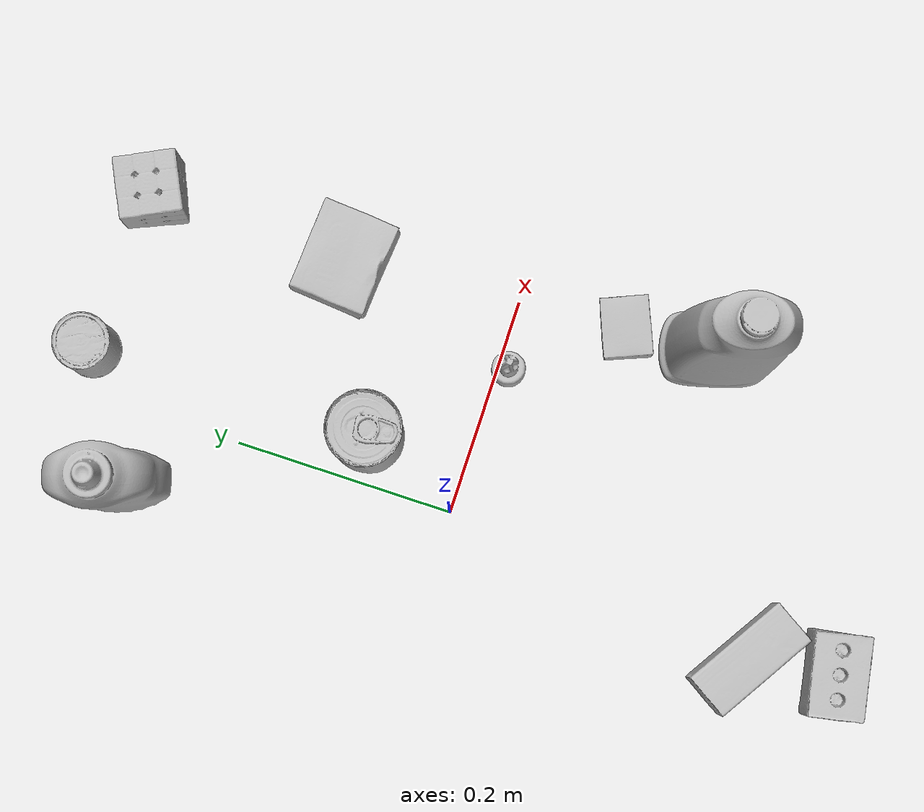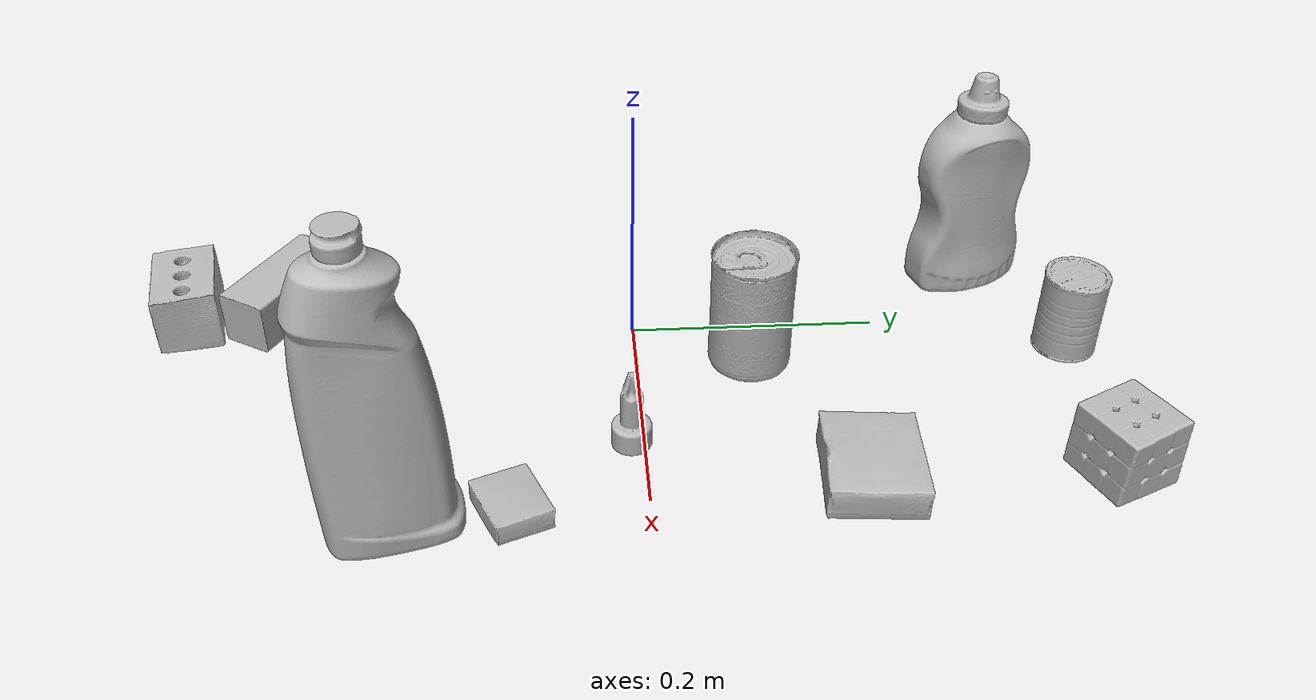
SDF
<sdf version="1.4">
  <world name="default">
    <light name="light1" type="point">
      <pose>0 0 1 0 0 0</pose>
      <diffuse>3 3 3 1</diffuse>
      <specular>3 3 3 1</specular>
    </light>
    <light name="light2" type="point">
      <pose>0 0.5 2 0 0 0</pose>
      <diffuse>1 1 1 1</diffuse>
      <specular>1 1 1 1</specular>
    </light>
    <light name="light3" type="point">
      <pose>0 0.5 2 0 0 0</pose>
      <diffuse>3 3 3 1</diffuse>
      <specular>3 3 3 1</specular>
    </light>
    <scene>
      <ambient>0.7 0.7 0.7</ambient>
    </scene>
    <model name="bottle1">
      <link name="link_bottle1">
        <collision name="default">
          <geometry>
            <mesh>
              <uri>model://bleach_cleanser/collision_meshes/collision.obj</uri>
              <scale>1.0 1.0 1.0</scale>
            </mesh>
          </geometry>
          <surface>
            <friction>
              <ode>
                <mu>0.5</mu>
                <mu2>0.5</mu2>
              </ode>
            </friction>
          <contact>
        <ode>
            <max_vel>0</max_vel>
            <min_depth>0.0001</min_depth>
            <kp>1e8</kp>
        </ode>
    </contact></surface>
        </collision>
        <visual name="default">
          <geometry>
            <mesh>
              <uri>model://bleach_cleanser/visual_meshes/visual.dae</uri>
              <scale>1.0 1.0 1.0</scale>
            </mesh>
          </geometry>
        </visual>
        <inertial>
          <mass>1.1050143241882324</mass>
          <pose>0.00012193183647468686 0.0037838828284293413 -0.02442161738872528 -0.07381670616137478 0.0004201160282461273 -0.006875061809122935</pose>
          <inertia>
            <ixx>0.0053782654</ixx>
            <iyy>0.005011756</iyy>
            <izz>0.00091954356</izz>
            <ixy>0</ixy>
            <ixz>0</ixz>
            <iyz>0</iyz>
          </inertia>
        </inertial>
      </link>
      <pose>0.21297812461853027 -0.18106931447982788 0.12578412890434265 -0.0001983227402467231 1.8017523485804916e-05 -2.8913253571844595</pose>
    </model>
    <model name="bottle2">
      <link name="link_bottle2">
        <collision name="default">
          <geometry>
            <mesh>
              <uri>model://mustard_bottle/collision_meshes/collision.obj</uri>
              <scale>1.0 1.0 1.0</scale>
            </mesh>
          </geometry>
          <surface>
            <friction>
              <ode>
                <mu>0.5</mu>
                <mu2>0.5</mu2>
              </ode>
            </friction>
          <contact>
        <ode>
            <max_vel>0</max_vel>
            <min_depth>0.0001</min_depth>
            <kp>1e8</kp>
        </ode>
    </contact></surface>
        </collision>
        <visual name="default">
          <geometry>
            <mesh>
              <uri>model://mustard_bottle/visual_meshes/visual.dae</uri>
              <scale>1.0 1.0 1.0</scale>
            </mesh>
          </geometry>
        </visual>
        <inertial>
          <mass>0.622285008430481</mass>
          <pose>0.0005032453336752951 -0.0001564739941386506 -0.0174757931381464 0.0004182326458762318 0.0009465782998157723 0.024853714910341117</pose>
          <inertia>
            <ixx>0.0017280002</ixx>
            <iyy>0.0015161741</iyy>
            <izz>0.00045541534</izz>
            <ixy>0</ixy>
            <ixz>0</ixz>
            <iyz>0</iyz>
          </inertia>
        </inertial>
      </link>
      <pose>-0.06735839694738388 0.29105642437934875 0.09568724781274796 -0.001497343943665016 0.025964682202750822 -2.858460105919197</pose>
    </model>
    <model name="toy1">
      <link name="link_toy1">
        <collision name="default">
          <geometry>
            <mesh>
              <uri>model://foam_brick/collision_meshes/collision.obj</uri>
              <scale>1.0 1.0 1.0</scale>
            </mesh>
          </geometry>
          <surface>
            <friction>
              <ode>
                <mu>0.5</mu>
                <mu2>0.5</mu2>
              </ode>
            </friction>
          <contact>
        <ode>
            <max_vel>0</max_vel>
            <min_depth>0.0001</min_depth>
            <kp>1e8</kp>
        </ode>
    </contact></surface>
        </collision>
        <visual name="default">
          <geometry>
            <mesh>
              <uri>model://foam_brick/visual_meshes/visual.dae</uri>
              <scale>1.0 1.0 1.0</scale>
            </mesh>
          </geometry>
        </visual>
        <inertial>
          <mass>0.1664208173751831</mass>
          <pose>-0.00025224717683158815 0.0003458438441157341 -0.00025321010616607964 -0.2940189404221327 0.017274440573450563 -0.0007449871782747126</pose>
          <inertia>
            <ixx>7.269573e-05</ixx>
            <iyy>0.00011606247</iyy>
            <izz>0.000117537464</izz>
            <ixy>0</ixy>
            <ixz>0</ixz>
            <iyz>0</iyz>
          </inertia>
        </inertial>
      </link>
      <pose>-0.0304952934384346 -0.36809200048446655 0.025922803208231926 0.01341657253645126 0.004152976894201747 0.1903158438456509</pose>
    </model>
    <model name="toy2">
      <link name="link_toy2">
        <collision name="default">
          <geometry>
            <mesh>
              <uri>model://d_toy_airplane/collision_meshes/collision.obj</uri>
              <scale>1.0 1.0 1.0</scale>
            </mesh>
          </geometry>
          <surface>
            <friction>
              <ode>
                <mu>0.5</mu>
                <mu2>0.5</mu2>
              </ode>
            </friction>
          <contact>
        <ode>
            <max_vel>0</max_vel>
            <min_depth>0.0001</min_depth>
            <kp>1e8</kp>
        </ode>
    </contact></surface>
        </collision>
        <visual name="default">
          <geometry>
            <mesh>
              <uri>model://d_toy_airplane/visual_meshes/visual.dae</uri>
              <scale>1.0 1.0 1.0</scale>
            </mesh>
          </geometry>
        </visual>
        <inertial>
          <mass>0.021938346326351166</mass>
          <pose>9.410325583303347e-05 -5.8093231928069144e-05 -0.01172809861600399 0.0002669142468379238 0.0046790018194854816 0.5194488187392164</pose>
          <inertia>
            <ixx>6.5766894e-06</ixx>
            <iyy>6.581649e-06</iyy>
            <izz>1.9855454e-06</izz>
            <ixy>0</ixy>
            <ixz>0</ixz>
            <iyz>0</iyz>
          </inertia>
        </inertial>
      </link>
      <pose>0.13835713267326355 -0.009228716604411602 0.03333916515111923 9.224148620831905e-05 -7.858524933421982e-05 -0.08811766615425565</pose>
    </model>
    <model name="can1">
      <link name="link_can1">
        <collision name="default">
          <geometry>
            <mesh>
              <uri>model://tomato_soup_can/collision_meshes/collision.obj</uri>
              <scale>1.0 1.0 1.0</scale>
            </mesh>
          </geometry>
          <surface>
            <friction>
              <ode>
                <mu>0.5</mu>
                <mu2>0.5</mu2>
              </ode>
            </friction>
          <contact>
        <ode>
            <max_vel>0</max_vel>
            <min_depth>0.0001</min_depth>
            <kp>1e8</kp>
        </ode>
    </contact></surface>
        </collision>
        <visual name="default">
          <geometry>
            <mesh>
              <uri>model://tomato_soup_can/visual_meshes/visual.dae</uri>
              <scale>1.0 1.0 1.0</scale>
            </mesh>
          </geometry>
        </visual>
        <inertial>
          <mass>0.39673706889152527</mass>
          <pose>0.00012652271834667772 0.00010805520287249237 -0.0017973972717300057 0.007020066809275346 0.000422998323222239 -0.009903841103285913</pose>
          <inertia>
            <ixx>0.00043498844</ixx>
            <iyy>0.00043247454</iyy>
            <izz>0.00022545052</izz>
            <ixy>0</ixy>
            <ixz>0</ixz>
            <iyz>0</iyz>
          </inertia>
        </inertial>
      </link>
      <pose>0.04130459204316139 0.0915074273943901 0.05127401277422905 -7.006122471780104e-07 -7.346633927450767e-07 -0.1382382663425463</pose>
    </model>
    <model name="can2">
      <link name="link_can2">
        <collision name="default">
          <geometry>
            <mesh>
              <uri>model://master_chef_can/collision_meshes/collision.obj</uri>
              <scale>0.5 0.5 0.5</scale>
            </mesh>
          </geometry>
          <surface>
            <friction>
              <ode>
                <mu>0.5</mu>
                <mu2>0.5</mu2>
              </ode>
            </friction>
          <contact>
        <ode>
            <max_vel>0</max_vel>
            <min_depth>0.0001</min_depth>
            <kp>1e8</kp>
        </ode>
    </contact></surface>
        </collision>
        <visual name="default">
          <geometry>
            <mesh>
              <uri>model://master_chef_can/visual_meshes/visual.dae</uri>
              <scale>0.5 0.5 0.5</scale>
            </mesh>
          </geometry>
        </visual>
        <inertial>
          <mass>0.08835740387439728</mass>
          <pose>-4.6619654312962666e-05 1.3926853625889635e-07 -5.079947004560381e-05 -0.0017995147102642629 0.0006479189020740588 -0.6102650934471076</pose>
          <inertia>
            <ixx>5.1859814e-05</ixx>
            <iyy>5.1478128e-05</iyy>
            <izz>2.8656508e-05</izz>
            <ixy>0</ixy>
            <ixz>0</ixz>
            <iyz>0</iyz>
          </inertia>
        </inertial>
      </link>
      <pose>0.038622863590717316 0.35215258598327637 0.03530199080705643 -1.5243981220608832e-06 -1.21038464727214e-06 -0.5778199799384341</pose>
    </model>
    <model name="box1">
      <link name="link_box1">
        <collision name="default">
          <geometry>
            <mesh>
              <uri>model://wood_block/collision_meshes/collision.obj</uri>
              <scale>0.5 0.5 0.5</scale>
            </mesh>
          </geometry>
          <surface>
            <friction>
              <ode>
                <mu>0.5</mu>
                <mu2>0.5</mu2>
              </ode>
            </friction>
          <contact>
        <ode>
            <max_vel>0</max_vel>
            <min_depth>0.0001</min_depth>
            <kp>1e8</kp>
        </ode>
    </contact></surface>
        </collision>
        <visual name="default">
          <geometry>
            <mesh>
              <uri>model://wood_block/visual_meshes/visual.dae</uri>
              <scale>0.5 0.5 0.5</scale>
            </mesh>
          </geometry>
        </visual>
        <inertial>
          <mass>0.15377527475357056</mass>
          <pose>-2.9066577553749084e-06 -0.000285404734313488 0.00013204291462898254 -0.05220825990774677 -0.0051926953585221414 -0.0068613782788382646</pose>
          <inertia>
            <ixx>5.1443654e-05</ixx>
            <iyy>0.00016251049</iyy>
            <izz>0.00016190263</izz>
            <ixy>0</ixy>
            <ixz>0</ixz>
            <iyz>0</iyz>
          </inertia>
        </inertial>
      </link>
      <pose>-0.04153205081820488 -0.29057320952415466 0.022527480497956276 -0.015845228203189683 -0.0004008840043586345 2.5897514585027372</pose>
    </model>
    <model name="box2">
      <link name="link_box2">
        <collision name="default">
          <geometry>
            <mesh>
              <uri>model://rubiks_cube/collision_meshes/collision.obj</uri>
              <scale>1.0 1.0 1.0</scale>
            </mesh>
          </geometry>
          <surface>
            <friction>
              <ode>
                <mu>0.5</mu>
                <mu2>0.5</mu2>
              </ode>
            </friction>
          <contact>
        <ode>
            <max_vel>0</max_vel>
            <min_depth>0.0001</min_depth>
            <kp>1e8</kp>
        </ode>
    </contact></surface>
        </collision>
        <visual name="default">
          <geometry>
            <mesh>
              <uri>model://rubiks_cube/visual_meshes/visual.dae</uri>
              <scale>1.0 1.0 1.0</scale>
            </mesh>
          </geometry>
        </visual>
        <inertial>
          <mass>0.2856966555118561</mass>
          <pose>2.6721041649580002e-05 5.2569666877388954e-05 -7.264316082000732e-06 -0.05467209736319516 -0.09813912050272719 -0.034455106160143086</pose>
          <inertia>
            <ixx>0.00015786657</ixx>
            <iyy>0.00015713037</iyy>
            <izz>0.00015917476</izz>
            <ixy>0</ixy>
            <ixz>0</ixz>
            <iyz>0</iyz>
          </inertia>
        </inertial>
      </link>
      <pose>0.18978750705718994 0.34441158175468445 0.02867898717522621 -2.409581404322928e-06 -4.85920119906262e-07 -1.1226220307958517</pose>
    </model>
    <model name="box3">
      <link name="link_box3">
        <collision name="default">
          <geometry>
            <mesh>
              <uri>model://gelatin_box/collision_meshes/collision.obj</uri>
              <scale>1.0 1.0 1.0</scale>
            </mesh>
          </geometry>
          <surface>
            <friction>
              <ode>
                <mu>0.5</mu>
                <mu2>0.5</mu2>
              </ode>
            </friction>
          <contact>
        <ode>
            <max_vel>0</max_vel>
            <min_depth>0.0001</min_depth>
            <kp>1e8</kp>
        </ode>
    </contact></surface>
        </collision>
        <visual name="default">
          <geometry>
            <mesh>
              <uri>model://gelatin_box/visual_meshes/visual.dae</uri>
              <scale>1.0 1.0 1.0</scale>
            </mesh>
          </geometry>
        </visual>
        <inertial>
          <mass>0.24612535536289215</mass>
          <pose>0.0004319618456065655 0.00011156871914863586 -0.00036403213744051754 -0.0010503719772071295 -0.004755818223732799 0.016440561334178715</pose>
          <inertia>
            <ixx>0.00017374444</ixx>
            <iyy>0.00012410474</iyy>
            <izz>0.00026447774</izz>
            <ixy>0</ixy>
            <ixz>0</ixz>
            <iyz>0</iyz>
          </inertia>
        </inertial>
      </link>
      <pose>0.1863487958908081 0.16190645098686218 0.015168310143053532 0.005596490698998893 -0.007303482019818887 -1.6569048153900954</pose>
    </model>
    <model name="box4">
      <link name="link_box4">
        <collision name="default">
          <geometry>
            <mesh>
              <uri>model://pudding_box/collision_meshes/collision.obj</uri>
              <scale>0.5 0.5 0.5</scale>
            </mesh>
          </geometry>
          <surface>
            <friction>
              <ode>
                <mu>0.5</mu>
                <mu2>0.5</mu2>
              </ode>
            </friction>
          <contact>
        <ode>
            <max_vel>0</max_vel>
            <min_depth>0.0001</min_depth>
            <kp>1e8</kp>
        </ode>
    </contact></surface>
        </collision>
        <visual name="default">
          <geometry>
            <mesh>
              <uri>model://pudding_box/visual_meshes/visual.dae</uri>
              <scale>0.5 0.5 0.5</scale>
            </mesh>
          </geometry>
        </visual>
        <inertial>
          <mass>0.025328172370791435</mass>
          <pose>0.00024474109522998333 0.00040339428232982755 -0.0002594413817860186 0.00521310085836893 -0.006603797787762854 0.020079828890944847</pose>
          <inertia>
            <ixx>7.15805e-06</ixx>
            <iyy>4.8159864e-06</iyy>
            <izz>1.0570731e-05</izz>
            <ixy>0</ixy>
            <ixz>0</ixz>
            <iyz>0</iyz>
          </inertia>
        </inertial>
      </link>
      <pose>0.20716749131679535 -0.0977342501282692 0.009862901642918587 0.02234866928153121 -0.011391627390625414 -1.1779132764677391</pose>
    </model>
  <physics type="ode">
      <max_contacts>50</max_contacts>
      <ode>
        <solver>
          <type>quick</type>
          <iters>75</iters>
        </solver>
        <constraints>
          <contact_max_correcting_vel>0</contact_max_correcting_vel>
          <contact_surface_layer>0</contact_surface_layer>
        </constraints>
      </ode>
    </physics></world>
</sdf>
